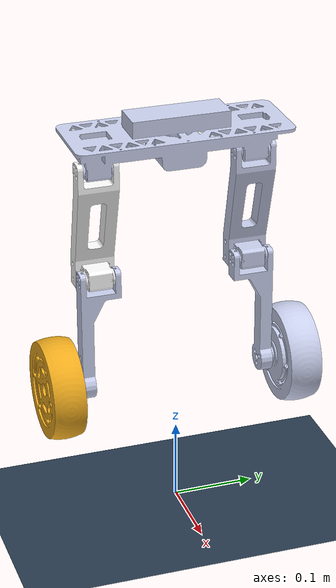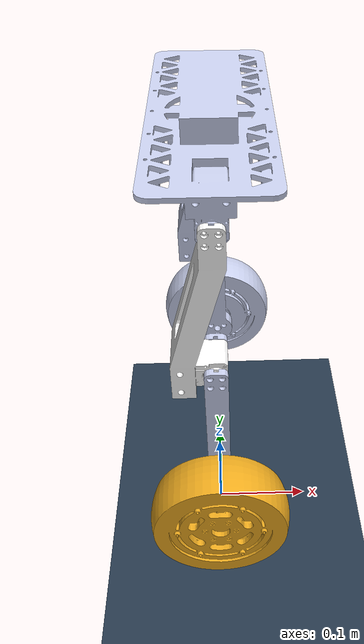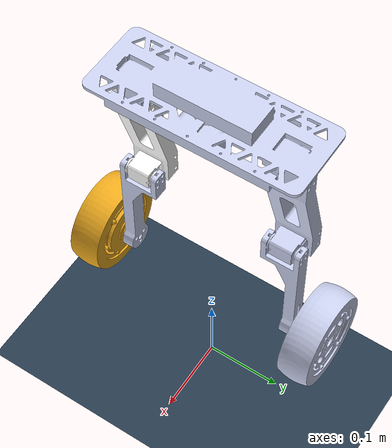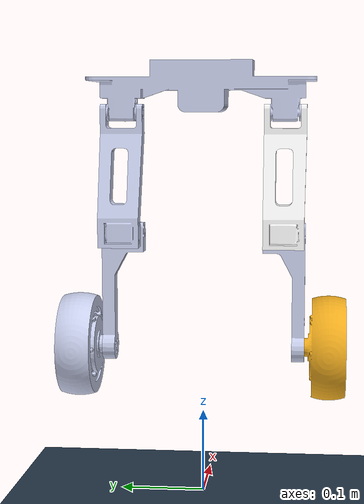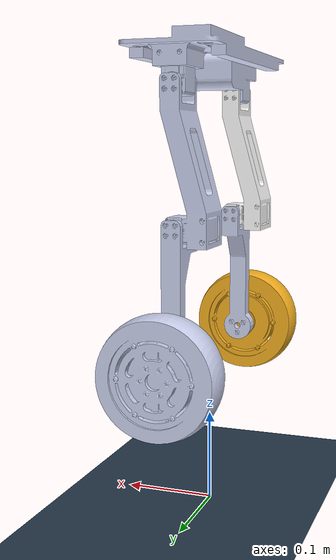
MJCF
<mujoco model="wheeled_legged_robot">
  <compiler angle="radian" />

  <!-- 强化学习推荐配置：更小的时间步长，确立重力 -->
  <!-- Isaac Lab: sim.dt=0.005, PhysX position iterations=8. -->
  <option timestep="0.005" gravity="0 0 -9.81" iterations="8" />
  <visual>
    <rgba haze="0.4 0.6 0.8 1" />
  </visual>

  <asset>
    <!-- 这里保持你原本的网格路径不变 -->
    <mesh name="base_link" content_type="model/stl" file="meshes/base_link.STL" />
    <mesh name="left_leg" content_type="model/stl" file="meshes/left_leg.STL" />
    <mesh name="left_foot" content_type="model/stl" file="meshes/left_foot.STL" />
    <mesh name="left_wheel" content_type="model/stl" file="meshes/left_wheel.STL" />
    <mesh name="right_leg" content_type="model/stl" file="meshes/right_leg.STL" />
    <mesh name="right_foot" content_type="model/stl" file="meshes/right_foot.STL" />
    <mesh name="right_wheel" content_type="model/stl" file="meshes/right_wheel.STL" />
    <!-- 新增：蓝天天穹 -->
    <texture type="skybox" builtin="gradient" rgb1="0.4 0.6 0.8" rgb2="0 0 0" width="512"
      height="512" />
    <!-- 新增：经典的深蓝/浅蓝交替的棋盘格纹理 -->
    <texture name="texplane" type="2d" builtin="checker" rgb1="0.2 0.3 0.4" rgb2="0.1 0.15 0.2"
      width="512" height="512" mark="cross" markrgb="0.8 0.8 0.8" />

    <!-- 新增：创建一个包含一点反射(reflectance)的地板材质 -->
    <material name="matplane" reflectance="0.2" texture="texplane" texrepeat="5 5" texuniform="true" />
  </asset>

  <worldbody>
    <!-- 1. 添加灯光和地板 -->
    <light pos="0 0 1.5" dir="0 0 -1" directional="true" />
    <!-- MuJoCo has one sliding coefficient; 0.8 is the Isaac dynamic-friction nominal. -->
    <geom name="ground" type="plane" size="10 10 0.1" material="matplane" friction="0.8 0.005 0.0001" />
    <body name="base_link" pos="0 0 0.5">
      <freejoint
        name="root" />
      <inertial pos="-8.7665e-05 0.00023377 -0.0089819" mass="0.94"
        diaginertia="0.002836 0.003618 0.00106" />
      <geom name="base_link_visual" type="mesh" rgba="0.79216 0.81961 0.93333 1" mesh="base_link"
        quat="0.70710678 0 0 -0.70710678" contype="0" conaffinity="0" density="0"
        group="1" />
      <geom name="base_link_collision" type="box" size="0.053 0.138 0.025" rgba="0 0.8 0.2 0.25"
        group="3" />

      <!-- 以下子节点层级与原先完全一致，只是整体缩进到了 base_link 内部 -->
      <body name="left_leg" pos="0 0.1148 -0.04075" quat="0 0 0.70710678 0.70710678">
        <inertial pos="0.014085 -0.086343 -0.017864" quat="0.704744 0.699928 0.079862 0.084017"
          mass="0.11866" diaginertia="0.00022805 0.000205989 3.64827e-05" />
        <joint name="servo2" pos="0 0 0" axis="0 0 1" range="-1.57 1.57" actuatorfrcrange="-2 2"
          damping="0" armature="0.01" />
        <geom name="left_leg_visual" type="mesh" rgba="0.79216 0.81961 0.93333 1" mesh="left_leg"
          contype="0" conaffinity="0" density="0" group="1" />
        <geom name="left_leg_collision" type="capsule" fromto="0.016 -0.09 -0.02 -0.006 -0.01 -0.02"
          size="0.027" rgba="0 0.8 0.2 0.25" group="3" />
        <body name="left_foot" pos="0.0002967 -0.14 0">
          <inertial pos="-0.00038874 -0.06993 -0.0060741"
            quat="0.747777 0.663944 -0.00184553 -0.00207827" mass="0.057726"
            diaginertia="0.000135864 0.000131727 9.16446e-06" />
          <joint name="servo1" pos="0 0 0" axis="0 0 1" range="-3.14 0" actuatorfrcrange="-2 2"
            damping="0" armature="0.01" />
          <geom name="left_foot_visual" type="mesh" rgba="0.79216 0.81961 0.93333 1"
            mesh="left_foot"
            contype="0" conaffinity="0" density="0" group="1" />
          <geom name="left_foot_collision" type="capsule" fromto="0.000 -0.05 0 0.0 0.00 -0.02"
            size="0.021" rgba="0 0.8 0.2 0.25" group="3" />
          <body name="left_wheel" pos="-0.00077824 -0.14 -0.00275" quat="-3.67321e-06 0 0 1">
            <inertial pos="-0.00048154 -0.00095238 0.036709" quat="0.5 0.5 -0.5 0.5" mass="0.65"
              diaginertia="0.001867884961 0.001027561414 0.001027561414" />
            <joint name="wheel1" pos="0 0 0" axis="0 0 1" damping="0" armature="0.01" />
            <geom name="left_wheel_visual" type="mesh" rgba="0.79216 0.81961 0.93333 1"
              mesh="left_wheel"
              contype="0" conaffinity="0" density="0" group="1" />
            <geom name="left_wheel_collision" type="cylinder" pos="0.0 0.0 0.03" size="0.0625 0.035"
              friction="0.8 0.005 0.0001"
              rgba="0 0.8 0.2 0.25"
              group="3" />
          </body>
        </body>
      </body>

      <body name="right_leg" pos="0 -0.1148 -0.04075" quat="0.70710678 0.70710678 0 0">
        <inertial pos="-0.014085 -0.086343 -0.017864" quat="0.704744 0.699928 -0.079862 -0.084017"
          mass="0.11866" diaginertia="0.00022805 0.000205989 3.64827e-05" />
        <joint name="servo4" pos="0 0 0" axis="0 0 -1" range="-1.57 1.57" actuatorfrcrange="-2 2"
          damping="0" armature="0.01" />
        <geom name="right_leg_visual" type="mesh" rgba="1 1 1 1" mesh="right_leg" contype="0"
          conaffinity="0" density="0" group="1" />
        <geom name="right_leg_collision" type="capsule"
          fromto="-0.016 -0.09 -0.02 0.006 -0.01 -0.02"
          size="0.027" rgba="0 0.8 0.2 0.25" group="3" />
        <body name="right_foot" pos="-0.0002967 -0.14 0">
          <inertial pos="0.00038874 -0.06993 -0.0060741"
            quat="0.747777 0.663944 0.00184553 0.00207827" mass="0.057726"
            diaginertia="0.000135864 0.000131727 9.16446e-06" />
          <joint name="servo3" pos="0 0 0" axis="0 0 -1" range="-3.14 0" actuatorfrcrange="-2 2"
            damping="0" armature="0.01" />
          <geom name="right_foot_visual" type="mesh" rgba="0.79216 0.81961 0.93333 1"
            mesh="right_foot"
            contype="0" conaffinity="0" density="0" group="1" />
          <geom name="right_foot_collision" type="capsule" fromto="0.000 -0.05 0 0.0 0.00 -0.02"
            size="0.021" rgba="0 0.8 0.2 0.25" group="3" />
          <body name="right_wheel" pos="0.00077824 -0.14 -0.00275">
            <inertial pos="-0.00048154 0.00095238 0.036709" quat="0.5 0.5 -0.5 0.5" mass="0.65"
              diaginertia="0.001867974835 0.001028295386 0.001028205512" />
            <joint name="wheel2" pos="0 0 0" axis="0 0 -1" damping="0" armature="0.01" />
            <geom name="right_wheel_visual" type="mesh" rgba="0.94118 0.67451 0.11765 1"
              mesh="right_wheel"
              contype="0" conaffinity="0" density="0" group="1" />
            <geom name="right_wheel_collision" type="cylinder" pos="0.0 0.0 0.03"
              size="0.0625 0.035" friction="0.8 0.005 0.0001"
              rgba="0 0.8 0.2 0.25" group="3" />
          </body>
        </body>
      </body>
    </body> <!--
    结束 base_link -->
  </worldbody>

  <contact>
    <exclude body1="base_link" body2="left_leg" />
    <exclude body1="base_link" body2="right_leg" />
    <exclude body1="left_leg" body2="right_leg" />
    <exclude body1="left_leg" body2="left_foot" />
    <exclude body1="right_leg" body2="right_foot" />
    <exclude body1="left_foot" body2="left_wheel" />
    <exclude body1="right_foot" body2="right_wheel" />
  </contact>

  <!-- 3. 定义 RL 的动作空间 -->
  <actuator>
    <!-- 腿部伺服电机：位置控制 -->
    <!-- kp 是位置环的比例增益（刚度）。你可以根据真实舵机的参数调大或调小 -->
    <!-- ctrlrange 设置为与对应关节的物理限位 (range) 保持一致 -->
    <position name="pos_servo2" joint="servo2" ctrllimited="true" ctrlrange="-1.57 1.57" kp="10"
      kv="2" forcerange="-2 2" />
    <position name="pos_servo1" joint="servo1" ctrllimited="true" ctrlrange="-3.14 0" kp="10" kv="2"
      forcerange="-2 2" />
    <position name="pos_servo4" joint="servo4" ctrllimited="true" ctrlrange="-1.57 1.57" kp="10"
      kv="2" forcerange="-2 2" />
    <position name="pos_servo3" joint="servo3" ctrllimited="true" ctrlrange="-3.14 0" kp="10" kv="2"
      forcerange="-2 2" />
    <!-- 轮毂电机：速度控制 -->
    <!-- kv 是速度环的增益。ctrlrange 代表你期望的最大角速度 (rad/s) -->
    <velocity name="vel_wheel1" joint="wheel1" ctrllimited="true" ctrlrange="-20 20" kv="2"
      forcerange="-2 2" />
    <velocity name="vel_wheel2" joint="wheel2" ctrllimited="true" ctrlrange="-20 20" kv="2"
      forcerange="-2 2" />
  </actuator>

</mujoco>
